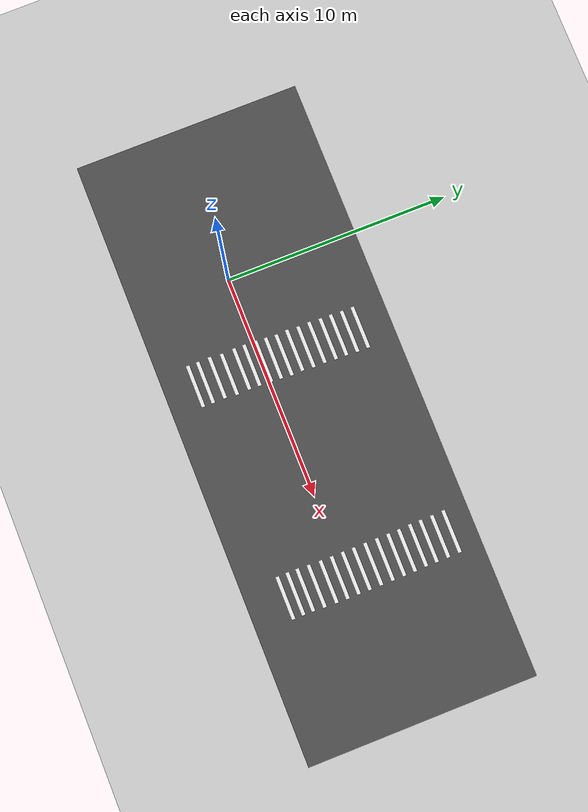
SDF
<sdf version="1.7">
 <world name="default">
  <model name="ground_plane">
   <static>1</static>
   <link name="link">
    <collision name="collision">
     <geometry><plane><normal>0 0 1</normal><size>100 100</size></plane></geometry>
     <surface><friction><ode><mu>100</mu><mu2>50</mu2></ode></friction></surface>
    </collision>
    <visual name="visual">
     <cast_shadows>0</cast_shadows>
     <geometry><plane><normal>0 0 1</normal><size>100 100</size></plane></geometry>
     <material>
      <script><uri>file://media/materials/scripts/gazebo.material</uri><name>Gazebo/Grey</name></script>
     </material>
    </visual>
   </link>
  </model>
  <light name="sun" type="directional">
   <pose>0 0 10 0 -0 0</pose>
   <diffuse>0.8 0.8 0.8 1</diffuse>
   <specular>0.2 0.2 0.2 1</specular>
   <attenuation>
    <range>1000</range>
    <constant>0.9</constant>
    <linear>0.01</linear>
    <quadratic>0.001</quadratic>
   </attenuation>
   <direction>-0.5 0.1 -0.9</direction>
   <spot><inner_angle>0</inner_angle><outer_angle>0</outer_angle><falloff>0</falloff></spot>
  </light>
  <scene><shadows>0</shadows><ambient>0.4 0.4 0.4 1</ambient><background>0.7 0.7 0.7 1</background></scene>
  <physics type="ode">
   <real_time_update_rate>1000</real_time_update_rate>
   <max_step_size>0.001</max_step_size>
   <real_time_factor>1</real_time_factor>
   <ode>
    <solver>
     <type>quick</type>
     <iters>150</iters>
     <precon_iters>0</precon_iters>
     <sor>1.4</sor>
     <use_dynamic_moi_rescaling>1</use_dynamic_moi_rescaling>
    </solver>
    <constraints>
     <cfm>1e-05</cfm>
     <erp>0.2</erp>
     <contact_max_correcting_vel>2000</contact_max_correcting_vel>
     <contact_surface_layer>0.01</contact_surface_layer>
    </constraints>
   </ode>
  </physics>
  <gravity>0 0 -9.8</gravity>
  <magnetic_field>6e-06 2.3e-05 -4.2e-05</magnetic_field>
  <atmosphere type="adiabatic"/>
  <audio><device>default</device></audio>
  <spherical_coordinates>
   <surface_model>EARTH_WGS84</surface_model>
   <latitude_deg>0</latitude_deg>
   <longitude_deg>0</longitude_deg>
   <elevation>0</elevation>
   <heading_deg>0</heading_deg>
  </spherical_coordinates>
  <model name="asphalt_plane">
   <static>1</static>
   <link name="link">
    <collision name="collision"><geometry><box><size>27.3358 10.1635 0.1</size></box></geometry></collision>
    <visual name="visual">
     <cast_shadows>0</cast_shadows>
     <geometry><box><size>27.3358 10.1635 0.1</size></box></geometry>
     <material>
      <script><name>Gazebo/DarkGrey</name><uri>file://media/materials/scripts/gazebo.material</uri></script>
     </material>
    </visual>
   </link>
   <pose>6.64867 0.746045 0 0 -0 0</pose>
  </model>
  <model name="unit_box_clone_3_clone_4_clone_7">
   <static>1</static>
   <pose>4 4.498 0.053193 0 -0 0.000169</pose>
   <link name="link">
    <inertial>
     <mass>1</mass>
     <inertia>
      <ixx>0.166667</ixx>
      <ixy>0</ixy>
      <ixz>0</ixz>
      <iyy>0.166667</iyy>
      <iyz>0</iyz>
      <izz>0.166667</izz>
     </inertia>
    </inertial>
    <collision name="collision"/>
    <visual name="visual">
     <geometry><box><size>1.90796 0.165074 0.006387</size></box></geometry>
     <material>
      <script><name>Gazebo/White</name><uri>file://media/materials/scripts/gazebo.material</uri></script>
     </material>
    </visual>
   </link>
  </model>
  <model name="unit_box_clone_3_clone_4_clone_8">
   <static>1</static>
   <pose>3.99733 4.0038 0.053193 0 -0 0.000169</pose>
   <link name="link">
    <inertial>
     <mass>1</mass>
     <inertia>
      <ixx>0.166667</ixx>
      <ixy>0</ixy>
      <ixz>0</ixz>
      <iyy>0.166667</iyy>
      <iyz>0</iyz>
      <izz>0.166667</izz>
     </inertia>
    </inertial>
    <collision name="collision"/>
    <visual name="visual">
     <geometry><box><size>1.90796 0.165074 0.006387</size></box></geometry>
     <material>
      <script><name>Gazebo/White</name><uri>file://media/materials/scripts/gazebo.material</uri></script>
     </material>
    </visual>
   </link>
  </model>
  <model name="unit_box_clone_3_clone_4_clone_9">
   <static>1</static>
   <pose>3.97062 3.50716 0.053193 0 -0 0.000169</pose>
   <link name="link">
    <inertial>
     <mass>1</mass>
     <inertia>
      <ixx>0.166667</ixx>
      <ixy>0</ixy>
      <ixz>0</ixz>
      <iyy>0.166667</iyy>
      <iyz>0</iyz>
      <izz>0.166667</izz>
     </inertia>
    </inertial>
    <collision name="collision"/>
    <visual name="visual">
     <geometry><box><size>1.90796 0.165074 0.006387</size></box></geometry>
     <material>
      <script><name>Gazebo/White</name><uri>file://media/materials/scripts/gazebo.material</uri></script>
     </material>
    </visual>
   </link>
  </model>
  <model name="unit_box_clone_3_clone_4_clone_10">
   <static>1</static>
   <pose>3.9586 3.03451 0.053193 0 -0 0.000169</pose>
   <link name="link">
    <inertial>
     <mass>1</mass>
     <inertia>
      <ixx>0.166667</ixx>
      <ixy>0</ixy>
      <ixz>0</ixz>
      <iyy>0.166667</iyy>
      <iyz>0</iyz>
      <izz>0.166667</izz>
     </inertia>
    </inertial>
    <collision name="collision"/>
    <visual name="visual">
     <geometry><box><size>1.90796 0.165074 0.006387</size></box></geometry>
     <material>
      <script><name>Gazebo/White</name><uri>file://media/materials/scripts/gazebo.material</uri></script>
     </material>
    </visual>
   </link>
  </model>
  <model name="unit_box_clone_3_clone_4_clone_11">
   <static>1</static>
   <pose>3.93079 2.52904 0.053193 0 -0 0.000169</pose>
   <link name="link">
    <inertial>
     <mass>1</mass>
     <inertia>
      <ixx>0.166667</ixx>
      <ixy>0</ixy>
      <ixz>0</ixz>
      <iyy>0.166667</iyy>
      <iyz>0</iyz>
      <izz>0.166667</izz>
     </inertia>
    </inertial>
    <collision name="collision"/>
    <visual name="visual">
     <geometry><box><size>1.90796 0.165074 0.006387</size></box></geometry>
     <material>
      <script><name>Gazebo/White</name><uri>file://media/materials/scripts/gazebo.material</uri></script>
     </material>
    </visual>
   </link>
  </model>
  <model name="unit_box_clone_3_clone_4_clone_12">
   <static>1</static>
   <pose>3.93896 2.02106 0.053193 0 -0 0.000169</pose>
   <link name="link">
    <inertial>
     <mass>1</mass>
     <inertia>
      <ixx>0.166667</ixx>
      <ixy>0</ixy>
      <ixz>0</ixz>
      <iyy>0.166667</iyy>
      <iyz>0</iyz>
      <izz>0.166667</izz>
     </inertia>
    </inertial>
    <collision name="collision"/>
    <visual name="visual">
     <geometry><box><size>1.90796 0.165074 0.006387</size></box></geometry>
     <material>
      <script><name>Gazebo/White</name><uri>file://media/materials/scripts/gazebo.material</uri></script>
     </material>
    </visual>
   </link>
  </model>
  <model name="unit_box_clone_3_clone_4_clone_13">
   <static>1</static>
   <pose>3.89977 1.52039 0.053193 0 -0 0.000169</pose>
   <link name="link">
    <inertial>
     <mass>1</mass>
     <inertia>
      <ixx>0.166667</ixx>
      <ixy>0</ixy>
      <ixz>0</ixz>
      <iyy>0.166667</iyy>
      <iyz>0</iyz>
      <izz>0.166667</izz>
     </inertia>
    </inertial>
    <collision name="collision"/>
    <visual name="visual">
     <geometry><box><size>1.90796 0.165074 0.006387</size></box></geometry>
     <material>
      <script><name>Gazebo/White</name><uri>file://media/materials/scripts/gazebo.material</uri></script>
     </material>
    </visual>
   </link>
  </model>
  <model name="unit_box_clone_3_clone_4_clone_14">
   <static>1</static>
   <pose>3.92039 1.02634 0.053193 0 -0 0.000169</pose>
   <link name="link">
    <inertial>
     <mass>1</mass>
     <inertia>
      <ixx>0.166667</ixx>
      <ixy>0</ixy>
      <ixz>0</ixz>
      <iyy>0.166667</iyy>
      <iyz>0</iyz>
      <izz>0.166667</izz>
     </inertia>
    </inertial>
    <collision name="collision"/>
    <visual name="visual">
     <geometry><box><size>1.90796 0.165074 0.006387</size></box></geometry>
     <material>
      <script><name>Gazebo/White</name><uri>file://media/materials/scripts/gazebo.material</uri></script>
     </material>
    </visual>
   </link>
  </model>
  <model name="unit_box_clone_3_clone_4_clone_15">
   <static>1</static>
   <pose>3.88356 0.552586 0.053193 0 -0 0.000169</pose>
   <link name="link">
    <inertial>
     <mass>1</mass>
     <inertia>
      <ixx>0.166667</ixx>
      <ixy>0</ixy>
      <ixz>0</ixz>
      <iyy>0.166667</iyy>
      <iyz>0</iyz>
      <izz>0.166667</izz>
     </inertia>
    </inertial>
    <collision name="collision"/>
    <visual name="visual">
     <geometry><box><size>1.90796 0.165074 0.006387</size></box></geometry>
     <material>
      <script><name>Gazebo/White</name><uri>file://media/materials/scripts/gazebo.material</uri></script>
     </material>
    </visual>
   </link>
  </model>
  <model name="unit_box_clone_3_clone_4_clone_16">
   <static>1</static>
   <pose>3.8496 0.103853 0.053193 0 -0 0.000169</pose>
   <link name="link">
    <inertial>
     <mass>1</mass>
     <inertia>
      <ixx>0.166667</ixx>
      <ixy>0</ixy>
      <ixz>0</ixz>
      <iyy>0.166667</iyy>
      <iyz>0</iyz>
      <izz>0.166667</izz>
     </inertia>
    </inertial>
    <collision name="collision"/>
    <visual name="visual">
     <geometry><box><size>1.90796 0.165074 0.006387</size></box></geometry>
     <material>
      <script><name>Gazebo/White</name><uri>file://media/materials/scripts/gazebo.material</uri></script>
     </material>
    </visual>
   </link>
  </model>
  <model name="unit_box_clone_3_clone_4_clone_17">
   <static>1</static>
   <pose>3.83179 -0.416608 0.053193 0 -0 0.000169</pose>
   <link name="link">
    <inertial>
     <mass>1</mass>
     <inertia>
      <ixx>0.166667</ixx>
      <ixy>0</ixy>
      <ixz>0</ixz>
      <iyy>0.166667</iyy>
      <iyz>0</iyz>
      <izz>0.166667</izz>
     </inertia>
    </inertial>
    <collision name="collision"/>
    <visual name="visual">
     <geometry><box><size>1.90796 0.165074 0.006387</size></box></geometry>
     <material>
      <script><name>Gazebo/White</name><uri>file://media/materials/scripts/gazebo.material</uri></script>
     </material>
    </visual>
   </link>
  </model>
  <model name="unit_box_clone_3_clone_4_clone_18">
   <static>1</static>
   <pose>3.82007 -0.876906 0.053193 0 -0 0.000169</pose>
   <link name="link">
    <inertial>
     <mass>1</mass>
     <inertia>
      <ixx>0.166667</ixx>
      <ixy>0</ixy>
      <ixz>0</ixz>
      <iyy>0.166667</iyy>
      <iyz>0</iyz>
      <izz>0.166667</izz>
     </inertia>
    </inertial>
    <collision name="collision"/>
    <visual name="visual">
     <geometry><box><size>1.90796 0.165074 0.006387</size></box></geometry>
     <material>
      <script><name>Gazebo/White</name><uri>file://media/materials/scripts/gazebo.material</uri></script>
     </material>
    </visual>
   </link>
  </model>
  <model name="unit_box_clone_3_clone_4_clone_19">
   <static>1</static>
   <pose>3.84406 -1.44599 0.053193 0 -0 0.000169</pose>
   <link name="link">
    <inertial>
     <mass>1</mass>
     <inertia>
      <ixx>0.166667</ixx>
      <ixy>0</ixy>
      <ixz>0</ixz>
      <iyy>0.166667</iyy>
      <iyz>0</iyz>
      <izz>0.166667</izz>
     </inertia>
    </inertial>
    <collision name="collision"/>
    <visual name="visual">
     <geometry><box><size>1.90796 0.165074 0.006387</size></box></geometry>
     <material>
      <script><name>Gazebo/White</name><uri>file://media/materials/scripts/gazebo.material</uri></script>
     </material>
    </visual>
   </link>
  </model>
  <model name="unit_box_clone_3_clone_4_clone_20">
   <static>1</static>
   <pose>3.78889 -1.98008 0.053193 0 -0 0.000169</pose>
   <link name="link">
    <inertial>
     <mass>1</mass>
     <inertia>
      <ixx>0.166667</ixx>
      <ixy>0</ixy>
      <ixz>0</ixz>
      <iyy>0.166667</iyy>
      <iyz>0</iyz>
      <izz>0.166667</izz>
     </inertia>
    </inertial>
    <collision name="collision"/>
    <visual name="visual">
     <geometry><box><size>1.90796 0.165074 0.006387</size></box></geometry>
     <material>
      <script><name>Gazebo/White</name><uri>file://media/materials/scripts/gazebo.material</uri></script>
     </material>
    </visual>
   </link>
  </model>
  <model name="unit_box_clone_3_clone_4_clone_21">
   <static>1</static>
   <pose>3.80384 -2.52052 0.053193 0 -0 0.000169</pose>
   <link name="link">
    <inertial>
     <mass>1</mass>
     <inertia>
      <ixx>0.166667</ixx>
      <ixy>0</ixy>
      <ixz>0</ixz>
      <iyy>0.166667</iyy>
      <iyz>0</iyz>
      <izz>0.166667</izz>
     </inertia>
    </inertial>
    <collision name="collision"/>
    <visual name="visual">
     <geometry><box><size>1.90796 0.165074 0.006387</size></box></geometry>
     <material>
      <script><name>Gazebo/White</name><uri>file://media/materials/scripts/gazebo.material</uri></script>
     </material>
    </visual>
   </link>
  </model>
  <model name="unit_box_clone_3_clone_4_clone_22">
   <static>1</static>
   <pose>3.8038 -2.97562 0.053193 0 -0 0.000169</pose>
   <link name="link">
    <inertial>
     <mass>1</mass>
     <inertia>
      <ixx>0.166667</ixx>
      <ixy>0</ixy>
      <ixz>0</ixz>
      <iyy>0.166667</iyy>
      <iyz>0</iyz>
      <izz>0.166667</izz>
     </inertia>
    </inertial>
    <collision name="collision"/>
    <visual name="visual">
     <geometry><box><size>1.90796 0.165074 0.006387</size></box></geometry>
     <material>
      <script><name>Gazebo/White</name><uri>file://media/materials/scripts/gazebo.material</uri></script>
     </material>
    </visual>
   </link>
  </model>
  <model name="unit_box_clone_3_clone_4_clone_23">
   <static>1</static>
   <pose>13.5206 3.28537 0.053193 0 -0 0.000169</pose>
   <link name="link">
    <inertial>
     <mass>1</mass>
     <inertia>
      <ixx>0.166667</ixx>
      <ixy>0</ixy>
      <ixz>0</ixz>
      <iyy>0.166667</iyy>
      <iyz>0</iyz>
      <izz>0.166667</izz>
     </inertia>
    </inertial>
    <collision name="collision"/>
    <visual name="visual">
     <geometry><box><size>1.90796 0.165074 0.006387</size></box></geometry>
     <material>
      <script><name>Gazebo/White</name><uri>file://media/materials/scripts/gazebo.material</uri></script>
     </material>
    </visual>
   </link>
  </model>
  <model name="unit_box_clone_3_clone_4_clone_24">
   <static>1</static>
   <pose>13.5476 2.77303 0.053193 0 -0 0.000169</pose>
   <link name="link">
    <inertial>
     <mass>1</mass>
     <inertia>
      <ixx>0.166667</ixx>
      <ixy>0</ixy>
      <ixz>0</ixz>
      <iyy>0.166667</iyy>
      <iyz>0</iyz>
      <izz>0.166667</izz>
     </inertia>
    </inertial>
    <collision name="collision"/>
    <visual name="visual">
     <geometry><box><size>1.90796 0.165074 0.006387</size></box></geometry>
     <material>
      <script><name>Gazebo/White</name><uri>file://media/materials/scripts/gazebo.material</uri></script>
     </material>
    </visual>
   </link>
  </model>
  <model name="unit_box_clone_3_clone_4_clone_25">
   <static>1</static>
   <pose>13.5541 2.28755 0.053193 0 -0 0.000169</pose>
   <link name="link">
    <inertial>
     <mass>1</mass>
     <inertia>
      <ixx>0.166667</ixx>
      <ixy>0</ixy>
      <ixz>0</ixz>
      <iyy>0.166667</iyy>
      <iyz>0</iyz>
      <izz>0.166667</izz>
     </inertia>
    </inertial>
    <collision name="collision"/>
    <visual name="visual">
     <geometry><box><size>1.90796 0.165074 0.006387</size></box></geometry>
     <material>
      <script><name>Gazebo/White</name><uri>file://media/materials/scripts/gazebo.material</uri></script>
     </material>
    </visual>
   </link>
  </model>
  <model name="unit_box_clone_3_clone_4_clone_26">
   <static>1</static>
   <pose>13.5596 1.77163 0.053193 0 -0 0.000169</pose>
   <link name="link">
    <inertial>
     <mass>1</mass>
     <inertia>
      <ixx>0.166667</ixx>
      <ixy>0</ixy>
      <ixz>0</ixz>
      <iyy>0.166667</iyy>
      <iyz>0</iyz>
      <izz>0.166667</izz>
     </inertia>
    </inertial>
    <collision name="collision"/>
    <visual name="visual">
     <geometry><box><size>1.90796 0.165074 0.006387</size></box></geometry>
     <material>
      <script><name>Gazebo/White</name><uri>file://media/materials/scripts/gazebo.material</uri></script>
     </material>
    </visual>
   </link>
  </model>
  <model name="unit_box_clone_3_clone_4_clone_27">
   <static>1</static>
   <pose>13.5585 1.24687 0.053193 0 -0 0.000169</pose>
   <link name="link">
    <inertial>
     <mass>1</mass>
     <inertia>
      <ixx>0.166667</ixx>
      <ixy>0</ixy>
      <ixz>0</ixz>
      <iyy>0.166667</iyy>
      <iyz>0</iyz>
      <izz>0.166667</izz>
     </inertia>
    </inertial>
    <collision name="collision"/>
    <visual name="visual">
     <geometry><box><size>1.90796 0.165074 0.006387</size></box></geometry>
     <material>
      <script><name>Gazebo/White</name><uri>file://media/materials/scripts/gazebo.material</uri></script>
     </material>
    </visual>
   </link>
  </model>
  <model name="unit_box_clone_3_clone_4_clone_28">
   <static>1</static>
   <pose>13.5631 0.726963 0.053193 0 -0 0.000169</pose>
   <link name="link">
    <inertial>
     <mass>1</mass>
     <inertia>
      <ixx>0.166667</ixx>
      <ixy>0</ixy>
      <ixz>0</ixz>
      <iyy>0.166667</iyy>
      <iyz>0</iyz>
      <izz>0.166667</izz>
     </inertia>
    </inertial>
    <collision name="collision"/>
    <visual name="visual">
     <geometry><box><size>1.90796 0.165074 0.006387</size></box></geometry>
     <material>
      <script><name>Gazebo/White</name><uri>file://media/materials/scripts/gazebo.material</uri></script>
     </material>
    </visual>
   </link>
  </model>
  <model name="unit_box_clone_3_clone_4_clone_29">
   <static>1</static>
   <pose>13.56 0.231924 0.053193 0 -0 0.000169</pose>
   <link name="link">
    <inertial>
     <mass>1</mass>
     <inertia>
      <ixx>0.166667</ixx>
      <ixy>0</ixy>
      <ixz>0</ixz>
      <iyy>0.166667</iyy>
      <iyz>0</iyz>
      <izz>0.166667</izz>
     </inertia>
    </inertial>
    <collision name="collision"/>
    <visual name="visual">
     <geometry><box><size>1.90796 0.165074 0.006387</size></box></geometry>
     <material>
      <script><name>Gazebo/White</name><uri>file://media/materials/scripts/gazebo.material</uri></script>
     </material>
    </visual>
   </link>
  </model>
  <model name="unit_box_clone_3_clone_4_clone_30">
   <static>1</static>
   <pose>13.5692 -0.26703 0.053193 0 -0 0.000169</pose>
   <link name="link">
    <inertial>
     <mass>1</mass>
     <inertia>
      <ixx>0.166667</ixx>
      <ixy>0</ixy>
      <ixz>0</ixz>
      <iyy>0.166667</iyy>
      <iyz>0</iyz>
      <izz>0.166667</izz>
     </inertia>
    </inertial>
    <collision name="collision"/>
    <visual name="visual">
     <geometry><box><size>1.90796 0.165074 0.006387</size></box></geometry>
     <material>
      <script><name>Gazebo/White</name><uri>file://media/materials/scripts/gazebo.material</uri></script>
     </material>
    </visual>
   </link>
  </model>
  <model name="unit_box_clone_3_clone_4_clone_31">
   <static>1</static>
   <pose>13.5578 -0.761718 0.053193 0 -0 0.000169</pose>
   <link name="link">
    <inertial>
     <mass>1</mass>
     <inertia>
      <ixx>0.166667</ixx>
      <ixy>0</ixy>
      <ixz>0</ixz>
      <iyy>0.166667</iyy>
      <iyz>0</iyz>
      <izz>0.166667</izz>
     </inertia>
    </inertial>
    <collision name="collision"/>
    <visual name="visual">
     <geometry><box><size>1.90796 0.165074 0.006387</size></box></geometry>
     <material>
      <script><name>Gazebo/White</name><uri>file://media/materials/scripts/gazebo.material</uri></script>
     </material>
    </visual>
   </link>
  </model>
  <model name="unit_box_clone_3_clone_4_clone_32">
   <static>1</static>
   <pose>13.5437 -1.29284 0.053193 0 -0 0.000169</pose>
   <link name="link">
    <inertial>
     <mass>1</mass>
     <inertia>
      <ixx>0.166667</ixx>
      <ixy>0</ixy>
      <ixz>0</ixz>
      <iyy>0.166667</iyy>
      <iyz>0</iyz>
      <izz>0.166667</izz>
     </inertia>
    </inertial>
    <collision name="collision"/>
    <visual name="visual">
     <geometry><box><size>1.90796 0.165074 0.006387</size></box></geometry>
     <material>
      <script><name>Gazebo/White</name><uri>file://media/materials/scripts/gazebo.material</uri></script>
     </material>
    </visual>
   </link>
  </model>
  <model name="unit_box_clone_3_clone_4_clone_33">
   <static>1</static>
   <pose>13.5188 -1.79726 0.053193 0 -0 0.000169</pose>
   <link name="link">
    <inertial>
     <mass>1</mass>
     <inertia>
      <ixx>0.166667</ixx>
      <ixy>0</ixy>
      <ixz>0</ixz>
      <iyy>0.166667</iyy>
      <iyz>0</iyz>
      <izz>0.166667</izz>
     </inertia>
    </inertial>
    <collision name="collision"/>
    <visual name="visual">
     <geometry><box><size>1.90796 0.165074 0.006387</size></box></geometry>
     <material>
      <script><name>Gazebo/White</name><uri>file://media/materials/scripts/gazebo.material</uri></script>
     </material>
    </visual>
   </link>
  </model>
  <model name="unit_box_clone_3_clone_4_clone_34">
   <static>1</static>
   <pose>13.515 -2.23675 0.053193 0 -0 0.000169</pose>
   <link name="link">
    <inertial>
     <mass>1</mass>
     <inertia>
      <ixx>0.166667</ixx>
      <ixy>0</ixy>
      <ixz>0</ixz>
      <iyy>0.166667</iyy>
      <iyz>0</iyz>
      <izz>0.166667</izz>
     </inertia>
    </inertial>
    <collision name="collision"/>
    <visual name="visual">
     <geometry><box><size>1.90796 0.165074 0.006387</size></box></geometry>
     <material>
      <script><name>Gazebo/White</name><uri>file://media/materials/scripts/gazebo.material</uri></script>
     </material>
    </visual>
   </link>
  </model>
  <model name="unit_box_clone_3_clone_4_clone_35">
   <static>1</static>
   <pose>13.5248 -2.68969 0.053193 0 -0 0.000169</pose>
   <link name="link">
    <inertial>
     <mass>1</mass>
     <inertia>
      <ixx>0.166667</ixx>
      <ixy>0</ixy>
      <ixz>0</ixz>
      <iyy>0.166667</iyy>
      <iyz>0</iyz>
      <izz>0.166667</izz>
     </inertia>
    </inertial>
    <collision name="collision"/>
    <visual name="visual">
     <geometry><box><size>1.90796 0.165074 0.006387</size></box></geometry>
     <material>
      <script><name>Gazebo/White</name><uri>file://media/materials/scripts/gazebo.material</uri></script>
     </material>
    </visual>
   </link>
  </model>
  <model name="unit_box_clone_3_clone_4_clone_23_clone">
   <static>1</static>
   <pose>13.5212 3.76626 0.053193 0 -0 0.000169</pose>
   <link name="link">
    <inertial>
     <mass>1</mass>
     <inertia>
      <ixx>0.166667</ixx>
      <ixy>0</ixy>
      <ixz>0</ixz>
      <iyy>0.166667</iyy>
      <iyz>0</iyz>
      <izz>0.166667</izz>
     </inertia>
    </inertial>
    <collision name="collision"/>
    <visual name="visual">
     <geometry><box><size>1.90796 0.165074 0.006387</size></box></geometry>
     <material>
      <script><name>Gazebo/White</name><uri>file://media/materials/scripts/gazebo.material</uri></script>
     </material>
    </visual>
   </link>
  </model>
  <model name="unit_box_clone_3_clone_4_clone_23_clone_0">
   <static>1</static>
   <pose>13.5154 4.28841 0.053193 0 -0 0.000169</pose>
   <link name="link">
    <inertial>
     <mass>1</mass>
     <inertia>
      <ixx>0.166667</ixx>
      <ixy>0</ixy>
      <ixz>0</ixz>
      <iyy>0.166667</iyy>
      <iyz>0</iyz>
      <izz>0.166667</izz>
     </inertia>
    </inertial>
    <collision name="collision"/>
    <visual name="visual">
     <geometry><box><size>1.90796 0.165074 0.006387</size></box></geometry>
     <material>
      <script><name>Gazebo/White</name><uri>file://media/materials/scripts/gazebo.material</uri></script>
     </material>
    </visual>
   </link>
  </model>
  <model name="unit_box_clone_3_clone_4_clone_23_clone_1">
   <static>1</static>
   <pose>13.4967 4.81067 0.053193 0 -0 0.000169</pose>
   <link name="link">
    <inertial>
     <mass>1</mass>
     <inertia>
      <ixx>0.166667</ixx>
      <ixy>0</ixy>
      <ixz>0</ixz>
      <iyy>0.166667</iyy>
      <iyz>0</iyz>
      <izz>0.166667</izz>
     </inertia>
    </inertial>
    <collision name="collision"/>
    <visual name="visual">
     <geometry><box><size>1.90796 0.165074 0.006387</size></box></geometry>
     <material>
      <script><name>Gazebo/White</name><uri>file://media/materials/scripts/gazebo.material</uri></script>
     </material>
    </visual>
   </link>
  </model>
 </world>
</sdf>
